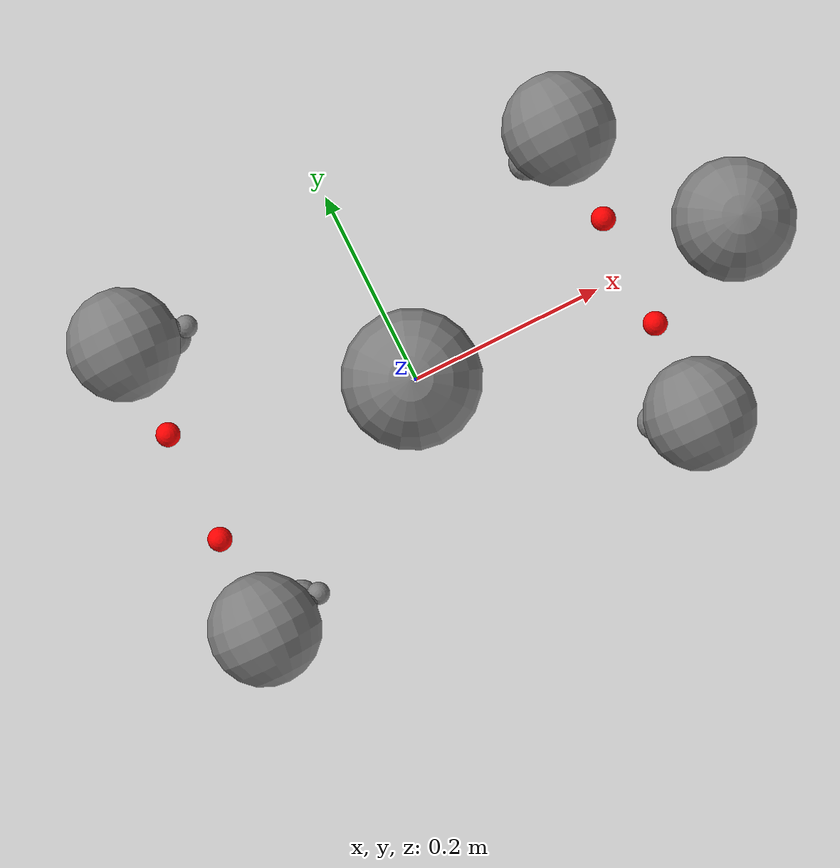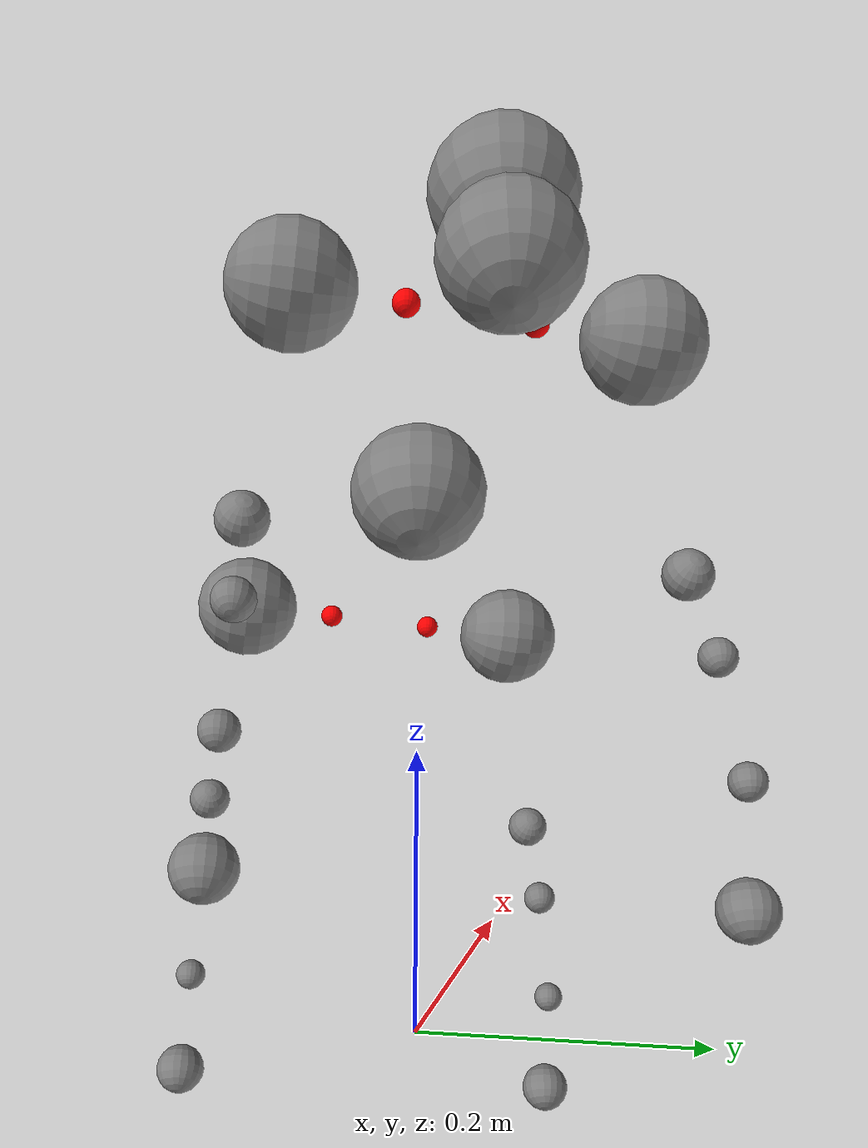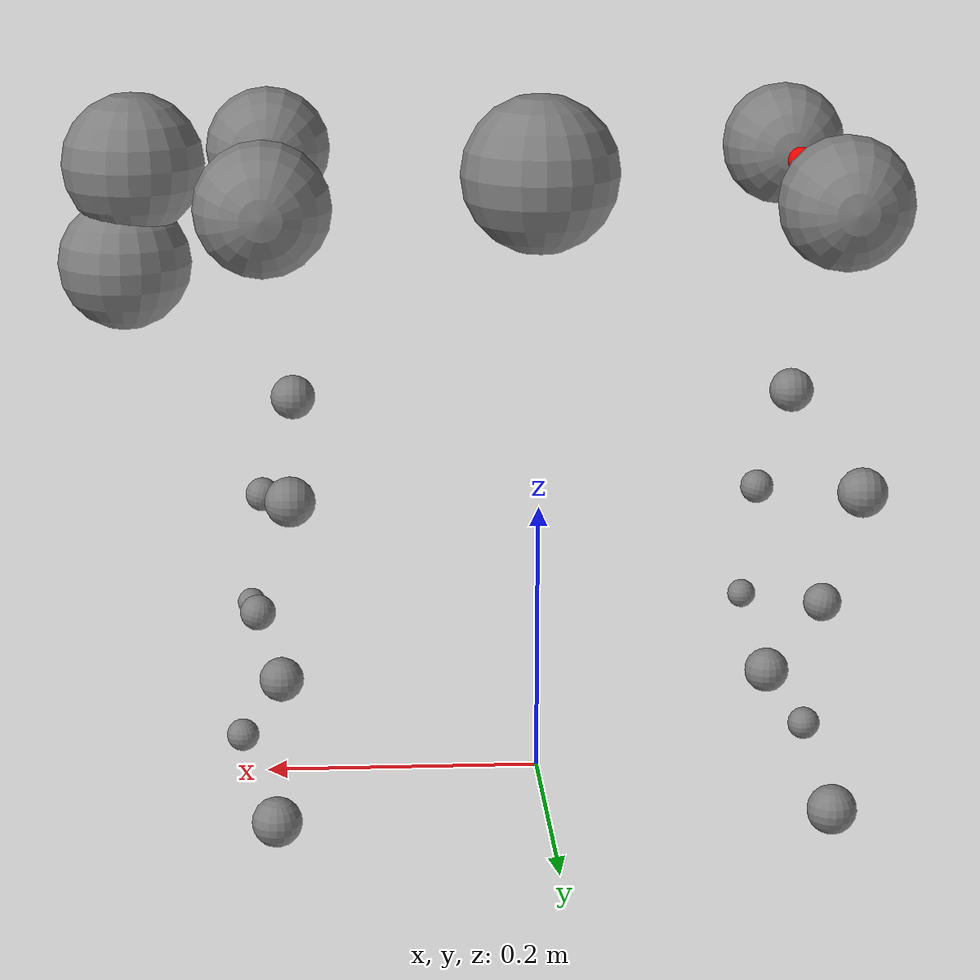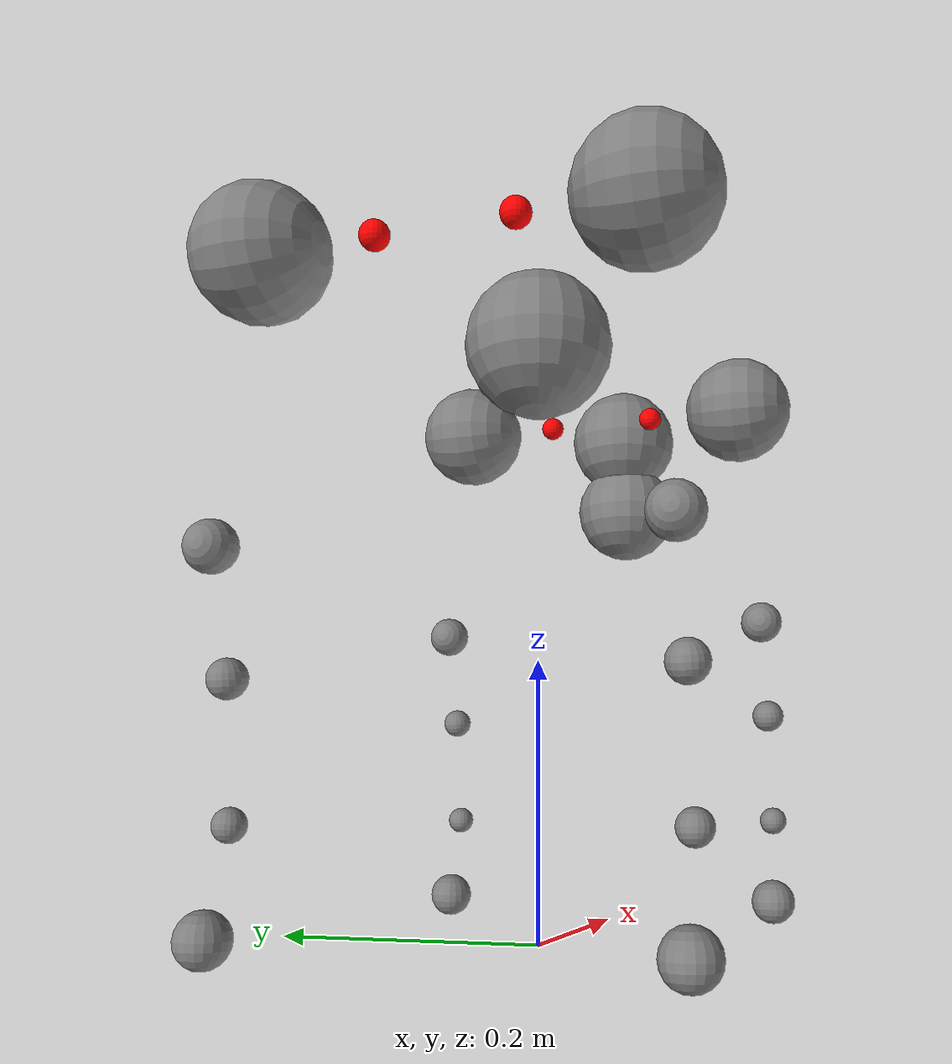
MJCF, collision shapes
<mujoco model="go2">
  <compiler angle="radian" meshdir="assets" autolimits="true"/>

  <option timestep="0.005" cone="pyramidal" impratio="100" iterations="1" ls_iterations="5">
    <flag eulerdamp="disable"/>
  </option>
  <custom>
    <numeric data="15" name="max_contact_points" />
    <numeric data="15" name="max_geom_pairs" />
  </custom>

  <default>
    <default class="go2">
      <geom friction="0.6" margin="0.001" condim="1"/>
      <joint axis="0 1 0" damping="2" armature="0.01"/>
      <general forcerange="-24 24" biastype="affine" gainprm="50 0 0" biasprm="0 -50 -0.5"/>

      <default class="abduction">
        <joint axis="1 0 0" range="-1.0472 1.0472"/>
        <general ctrlrange="-0.9472 0.9472"/>
      </default>
      <default class="hip">
        <joint range="-1.5708 3.4907"/>
        <general ctrlrange="-1.4 2.5"/>
      </default>
      <default class="knee">
        <joint range="-2.7227 -0.83776"/>
        <general ctrlrange="-2.6227 -0.84776"/>
      </default>
      <default class="visual">
        <geom type="mesh" contype="0" conaffinity="0" group="2"/>
      </default>
      <default class="go2foot">
        <site group="1" pos="-0.002 0 -0.213"/>
        <geom rgba="0.231373 0.380392 0.705882 1"/>
      </default>
      <default class="collision">
        <geom group="3"/>
        <default class="foot">
          <geom size="0.0175" pos="-0.002 0 -0.213" priority="1" solimp="0.015 1 0.031" condim="6"
            friction="0.8 0.02 0.01"/>
        </default>
      </default>
    </default>
  </default>

  <asset>
    <material name="metal" rgba=".9 .95 .95 1"/>
    <material name="black" rgba="0 0 0 1"/>
    <material name="white" rgba="1 1 1 1"/>
    <material name="gray" rgba="0.671705 0.692426 0.774270 1"/>

    <mesh file="base_0.obj"/>
    <mesh file="base_1.obj"/>
    <mesh file="base_2.obj"/>
    <mesh file="base_3.obj"/>
    <mesh file="base_4.obj"/>
    <mesh file="hip_0.obj"/>
    <mesh file="hip_1.obj"/>
    <mesh file="thigh_0.obj"/>
    <mesh file="thigh_1.obj"/>
    <mesh file="thigh_mirror_0.obj"/>
    <mesh file="thigh_mirror_1.obj"/>
    <mesh file="calf_0.obj"/>
    <mesh file="calf_1.obj"/>
    <mesh file="calf_mirror_0.obj"/>
    <mesh file="calf_mirror_1.obj"/>
    <mesh file="foot.obj"/>
  </asset>

  <worldbody>
    <body name="base" pos="0 0 0.445" childclass="go2">
      <camera name="track" pos="0.846 -1.465 0.916" xyaxes="0.866 0.500 0.000 -0.171 0.296 0.940" mode="trackcom"/>
      <inertial pos="0.021112 0 -0.005366" quat="-0.000543471 0.713435 -0.00173769 0.700719" mass="6.921"
        diaginertia="0.107027 0.0980771 0.0244531"/>
      <freejoint/>
      <geom mesh="base_0" material="black" class="visual"/>
      <geom mesh="base_1" material="black" class="visual"/>
      <geom mesh="base_2" material="black" class="visual"/>
      <geom mesh="base_3" material="white" class="visual"/>
      <geom mesh="base_4" material="gray" class="visual"/>
      <geom size="0.057 0.04675 0.057" class="collision"/>
      <geom size="0.05 0.045" pos="0.285 0 0.01" class="collision"/>
      <geom size="0.047" pos="0.293 0 -0.06" class="collision"/>
      <site name="imu" pos="-0.02557 0 0.04232"/>
      <site name="base" pos="0 0 0" />
      <body name="FL_hip" pos="0.1934 0.0465 0">
        <inertial pos="-0.0054 0.00194 -0.000105" quat="0.497014 0.499245 0.505462 0.498237" mass="0.678"
          diaginertia="0.00088403 0.000596003 0.000479967"/>
        <joint name="FL_hip_joint" class="abduction"/>
        <geom mesh="hip_0" material="metal" class="visual"/>
        <geom mesh="hip_1" material="gray" class="visual"/>
        <geom size="0.046 0.02" pos="0 0.08 0" quat="1 1 0 0" class="collision"/>
        <site name="FL_hip_site" pos = "0 0 0" size="0.01" type="sphere" rgba="1 0 0 1"/>
        <body name="FL_thigh" pos="0 0.0955 0">
          <inertial pos="-0.00374 -0.0223 -0.0327" quat="0.829533 0.0847635 -0.0200632 0.551623" mass="1.152"
            diaginertia="0.00594973 0.00584149 0.000878787"/>
          <joint name="FL_thigh_joint" class="hip"/>
          <geom mesh="thigh_0" material="metal" class="visual"/>
          <geom mesh="thigh_1" material="gray" class="visual"/>
          <geom size="0.017 0.01225 0.017" pos="-0.015 0 -0.1955" quat="0.707107 0 0.707107 0" class="collision"/>
          <body name="FL_calf" pos="0 0 -0.213">
            <inertial pos="0.00629595 -0.000622121 -0.141417" quat="0.710672 0.00154099 -0.00450087 0.703508"
              mass="0.241352" diaginertia="0.0014901 0.00146356 5.31397e-05"/>
            <joint name="FL_calf_joint" class="knee"/>
            <geom mesh="calf_0" material="gray" class="visual"/>
            <geom mesh="calf_1" material="black" class="visual"/>
            <geom size="0.012 0.06" pos="0.008 0 -0.06" quat="0.994493 0 -0.104807 0" class="collision"/>
            <geom size="0.011 0.0325" pos="0.02 0 -0.148" quat="0.999688 0 0.0249974 0" class="collision"/>
            <geom pos="0 0 -0.213" mesh="foot" class="visual" material="black"/>
            <geom name="FL" class="foot"/>
            <site name="FL_grf_sensor" class="go2foot"/>
          </body>
        </body>
      </body>
      <body name="FR_hip" pos="0.1934 -0.0465 0">
        <inertial pos="-0.0054 -0.00194 -0.000105" quat="0.498237 0.505462 0.499245 0.497014" mass="0.678"
          diaginertia="0.00088403 0.000596003 0.000479967"/>
        <joint name="FR_hip_joint" class="abduction"/>
        <geom mesh="hip_0" material="metal" class="visual" quat="4.63268e-05 1 0 0"/>
        <geom mesh="hip_1" material="gray" class="visual" quat="4.63268e-05 1 0 0"/>
        <geom size="0.046 0.02" pos="0 -0.08 0" quat="0.707107 0.707107 0 0" class="collision"/>
        <site name="FR_hip_site" pos = "0 0 0" size="0.01" type="sphere" rgba="1 0 0 1"/>
        <body name="FR_thigh" pos="0 -0.0955 0">
          <inertial pos="-0.00374 0.0223 -0.0327" quat="0.551623 -0.0200632 0.0847635 0.829533" mass="1.152"
            diaginertia="0.00594973 0.00584149 0.000878787"/>
          <joint name="FR_thigh_joint" class="hip"/>
          <geom mesh="thigh_mirror_0" material="metal" class="visual"/>
          <geom mesh="thigh_mirror_1" material="gray" class="visual"/>
          <geom size="0.017 0.01225 0.017" pos="-0.015 0 -0.1955" quat="0.707107 0 0.707107 0" class="collision"/>
          <body name="FR_calf" pos="0 0 -0.213">
            <inertial pos="0.00629595 0.000622121 -0.141417" quat="0.703508 -0.00450087 0.00154099 0.710672"
              mass="0.241352" diaginertia="0.0014901 0.00146356 5.31397e-05"/>
            <joint name="FR_calf_joint" class="knee"/>
            <geom mesh="calf_mirror_0" material="gray" class="visual"/>
            <geom mesh="calf_mirror_1" material="black" class="visual"/>
            <geom size="0.013 0.06" pos="0.01 0 -0.06" quat="0.995004 0 -0.0998334 0" class="collision"/>
            <geom size="0.011 0.0325" pos="0.02 0 -0.148" quat="0.999688 0 0.0249974 0" class="collision"/>
            <geom pos="0 0 -0.213" mesh="foot" class="visual" material="black"/>
            <geom name="FR" class="foot"/>
            <site name="FR_grf_sensor" class="go2foot"/>
          </body>
        </body>
      </body>
      <body name="RL_hip" pos="-0.1934 0.0465 0">
        <inertial pos="0.0054 0.00194 -0.000105" quat="0.505462 0.498237 0.497014 0.499245" mass="0.678"
          diaginertia="0.00088403 0.000596003 0.000479967"/>
        <joint name="RL_hip_joint" class="abduction"/>
        <geom mesh="hip_0" material="metal" class="visual" quat="4.63268e-05 0 1 0"/>
        <geom mesh="hip_1" material="gray" class="visual" quat="4.63268e-05 0 1 0"/>
        <geom size="0.046 0.02" pos="0 0.08 0" quat="0.707107 0.707107 0 0" class="collision"/>
        <site name="RL_hip_site" pos = "0 0 0" size="0.01" type="sphere" rgba="1 0 0 1"/>
        <body name="RL_thigh" pos="0 0.0955 0">
          <inertial pos="-0.00374 -0.0223 -0.0327" quat="0.829533 0.0847635 -0.0200632 0.551623" mass="1.152"
            diaginertia="0.00594973 0.00584149 0.000878787"/>
          <joint name="RL_thigh_joint" class="hip"/>
          <geom mesh="thigh_0" material="metal" class="visual"/>
          <geom mesh="thigh_1" material="gray" class="visual"/>
          <geom size="0.017 0.01225 0.017" pos="-0.015 0 -0.1955" quat="0.707107 0 0.707107 0" class="collision"/>
          <body name="RL_calf" pos="0 0 -0.213">
            <inertial pos="0.00629595 -0.000622121 -0.141417" quat="0.710672 0.00154099 -0.00450087 0.703508"
              mass="0.241352" diaginertia="0.0014901 0.00146356 5.31397e-05"/>
            <joint name="RL_calf_joint" class="knee"/>
            <geom mesh="calf_0" material="gray" class="visual"/>
            <geom mesh="calf_1" material="black" class="visual"/>
            <geom size="0.013 0.06" pos="0.01 0 -0.06" quat="0.995004 0 -0.0998334 0" class="collision"/>
            <geom size="0.011 0.0325" pos="0.02 0 -0.148" quat="0.999688 0 0.0249974 0" class="collision"/>
            <geom pos="0 0 -0.213" mesh="foot" class="visual" material="black"/>
            <geom name="RL" class="foot"/>
            <site name="RL_grf_sensor" class="go2foot"/>
          </body>
        </body>
      </body>
      <body name="RR_hip" pos="-0.1934 -0.0465 0">
        <inertial pos="0.0054 -0.00194 -0.000105" quat="0.499245 0.497014 0.498237 0.505462" mass="0.678"
          diaginertia="0.00088403 0.000596003 0.000479967"/>
        <joint name="RR_hip_joint" class="abduction"/>
        <geom mesh="hip_0" material="metal" class="visual" quat="2.14617e-09 4.63268e-05 4.63268e-05 -1"/>
        <geom mesh="hip_1" material="gray" class="visual" quat="2.14617e-09 4.63268e-05 4.63268e-05 -1"/>
        <geom size="0.046 0.02" pos="0 -0.08 0" quat="0.707107 0.707107 0 0" class="collision"/>
        <site name="RR_hip_site" pos = "0 0 0" size="0.01" type="sphere" rgba="1 0 0 1"/>
        <body name="RR_thigh" pos="0 -0.0955 0">
          <inertial pos="-0.00374 0.0223 -0.0327" quat="0.551623 -0.0200632 0.0847635 0.829533" mass="1.152"
            diaginertia="0.00594973 0.00584149 0.000878787"/>
          <joint name="RR_thigh_joint" class="hip"/>
          <geom mesh="thigh_mirror_0" material="metal" class="visual"/>
          <geom mesh="thigh_mirror_1" material="gray" class="visual"/>
          <geom size="0.017 0.01225 0.017" pos="-0.015 0 -0.1955" quat="0.707107 0 0.707107 0" class="collision"/>
          <body name="RR_calf" pos="0 0 -0.213">
            <inertial pos="0.00629595 0.000622121 -0.141417" quat="0.703508 -0.00450087 0.00154099 0.710672"
              mass="0.241352" diaginertia="0.0014901 0.00146356 5.31397e-05"/>
            <joint name="RR_calf_joint" class="knee"/>
            <geom mesh="calf_mirror_0" material="gray" class="visual"/>
            <geom mesh="calf_mirror_1" material="black" class="visual"/>
            <geom size="0.013 0.06" pos="0.01 0 -0.06" quat="0.995004 0 -0.0998334 0" class="collision"/>
            <geom size="0.011 0.0325" pos="0.02 0 -0.148" quat="0.999688 0 0.0249974 0" class="collision"/>
            <geom pos="0 0 -0.213" mesh="foot" class="visual" material="black"/>
            <geom name="RR" class="foot"/>
            <site name="RR_grf_sensor" class="go2foot"/>
          </body>
        </body>
      </body>
    </body>
  </worldbody>

  <actuator>
    <general class="abduction" name="FL_hip" joint="FL_hip_joint"/>
    <general class="hip" name="FL_thigh" joint="FL_thigh_joint"/>
    <general class="knee" name="FL_calf" joint="FL_calf_joint"/>
    <general class="abduction" name="FR_hip" joint="FR_hip_joint"/>
    <general class="hip" name="FR_thigh" joint="FR_thigh_joint"/>
    <general class="knee" name="FR_calf" joint="FR_calf_joint"/>
    <general class="abduction" name="RL_hip" joint="RL_hip_joint"/>
    <general class="hip" name="RL_thigh" joint="RL_thigh_joint"/>
    <general class="knee" name="RL_calf" joint="RL_calf_joint"/>
    <general class="abduction" name="RR_hip" joint="RR_hip_joint"/>
    <general class="hip" name="RR_thigh" joint="RR_thigh_joint"/>
    <general class="knee" name="RR_calf" joint="RR_calf_joint"/>
  </actuator>

  <sensor>
    <jointpos joint="FL_hip_joint" name="FL_hip_pos"/>
    <jointpos joint="FL_thigh_joint" name="FL_thigh_pos"/>
    <jointpos joint="FL_calf_joint" name="FL_calf_pos"/>
    <jointpos joint="RL_hip_joint" name="RL_hip_pos"/>
    <jointpos joint="RL_thigh_joint" name="RL_thigh_pos"/>
    <jointpos joint="RL_calf_joint" name="RL_calf_pos"/>
    <jointpos joint="FR_hip_joint" name="FR_hip_pos"/>
    <jointpos joint="FR_thigh_joint" name="FR_thigh_pos"/>
    <jointpos joint="FR_calf_joint" name="FR_calf_pos"/>
    <jointpos joint="RR_hip_joint" name="RR_hip_pos"/>
    <jointpos joint="RR_thigh_joint" name="RR_thigh_pos"/>
    <jointpos joint="RR_calf_joint" name="RR_calf_pos"/>
    <jointvel joint="FL_hip_joint" name="FL_hip_vel"/>
    <jointvel joint="FL_thigh_joint" name="FL_thigh_vel"/>
    <jointvel joint="FL_calf_joint" name="FL_calf_vel"/>
    <jointvel joint="RL_hip_joint" name="RL_hip_vel"/>
    <jointvel joint="RL_thigh_joint" name="RL_thigh_vel"/>
    <jointvel joint="RL_calf_joint" name="RL_calf_vel"/>
    <jointvel joint="FR_hip_joint" name="FR_hip_vel"/>
    <jointvel joint="FR_thigh_joint" name="FR_thigh_vel"/>
    <jointvel joint="FR_calf_joint" name="FR_calf_vel"/>
    <jointvel joint="RR_hip_joint" name="RR_hip_vel"/>
    <jointvel joint="RR_thigh_joint" name="RR_thigh_vel"/>
    <jointvel joint="RR_calf_joint" name="RR_calf_vel"/>
    <gyro site="imu" name="imu_gyro"/>
    <accelerometer site="imu" name="imu_acc"/>
    <framequat objtype="site" objname="imu" name="imu_quat"/>
    <framepos objtype="site" objname="imu" name="frame_pos"/>
    <framelinvel objtype="site" objname="imu" name="frame_vel_global"/>
    <frameangvel objtype="site" objname="imu" name="frame_angvel_global"/>
    <touch name="FR_contact_sensor" site="FR_grf_sensor"/>
    <touch name="FL_contact_sensor" site="FL_grf_sensor"/>
    <touch name="RR_contact_sensor" site="RR_grf_sensor"/>
    <touch name="RL_contact_sensor" site="RL_grf_sensor"/>
    <force name="FR_grf" site="FR_grf_sensor"/>
    <force name="FL_grf" site="FL_grf_sensor"/>
    <force name="RR_grf" site="RR_grf_sensor"/>
    <force name="RL_grf" site="RL_grf_sensor"/>
    <framelinvel name="FR_foot_linvel" objname="FR_grf_sensor" objtype="site"/>
    <framelinvel name="FL_foot_linvel" objname="FL_grf_sensor" objtype="site"/>
    <framelinvel name="RR_foot_linvel" objname="RR_grf_sensor" objtype="site"/>
    <framelinvel name="RL_foot_linvel" objname="RL_grf_sensor" objtype="site"/>
    <framequat name="FR_foot_quat" objname="FR_grf_sensor" objtype="site"/>
    <framequat name="FL_foot_quat" objname="FL_grf_sensor" objtype="site"/>
    <framequat name="RR_foot_quat" objname="RR_grf_sensor" objtype="site"/>
    <framequat name="RL_foot_quat" objname="RL_grf_sensor" objtype="site"/>
  </sensor>

  <keyframe>
    <key name="stand" qpos="0 0 0.27 1 0 0 0 0 0.9 -1.8 0 0.9 -1.8 0 0.9 -1.8 0 0.9 -1.8"
      ctrl="0 0.9 -1.8 0 0.9 -1.8 0 0.9 -1.8 0 0.9 -1.8"/>
  </keyframe>
</mujoco>
